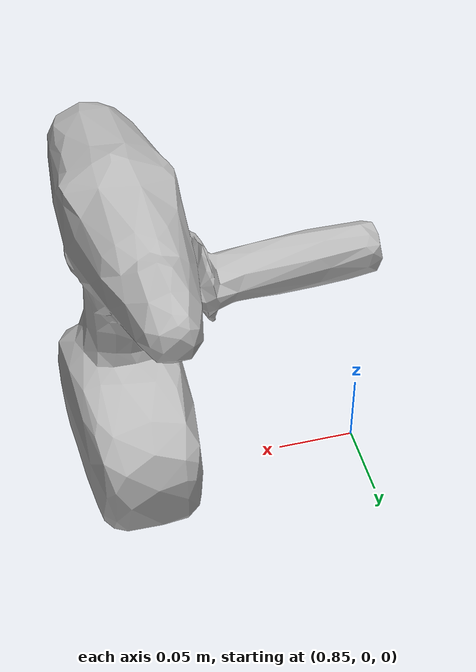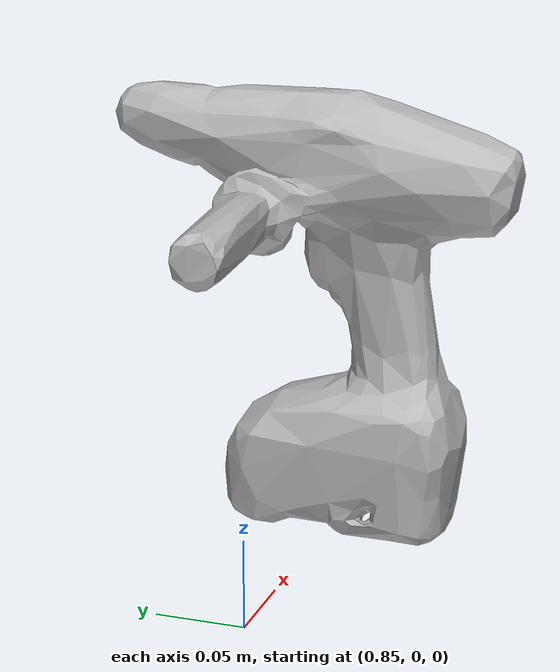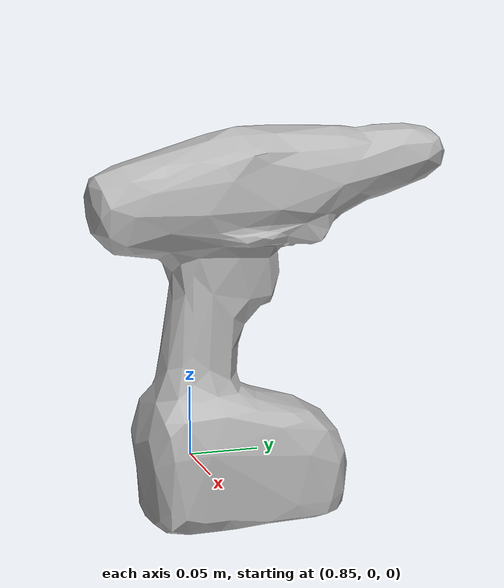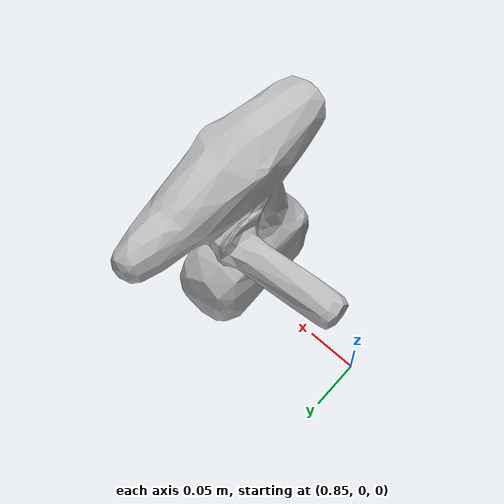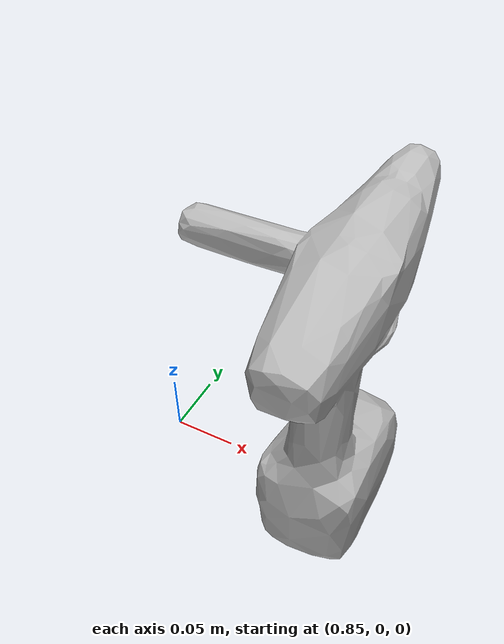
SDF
<?xml version="1.0" ?>
<sdf version="1.4">
  <world name="default">
    <include>
      <pose>1 0 0 0 0 0</pose>
      <static>true</static>
      <uri>model://cordless_drill</uri>
    </include>

    <model name="hokuyo">
      <static>true</static>
      <link name="link">
        <inertial>
          <mass>0.1</mass>
        </inertial>

        <sensor name="laser" type="ray">
          <pose>0.01 0 0.20 0 -0 0</pose>
          <ray>
            <scan>
              <horizontal>
                <samples>20</samples>
                <resolution>1</resolution>
                <min_angle>-0.16889</min_angle>
                <max_angle>0.168899</max_angle>
              </horizontal>
            </scan>
            <range>
              <min>0.08</min>
              <max>10</max>
              <resolution>0.01</resolution>
            </range>
          </ray>

          <plugin name="laser" filename="libRayPlugin.so" />
          <always_on>1</always_on>
          <update_rate>30</update_rate>
          <visualize>true</visualize>
        </sensor>
      </link>
    </model>

  </world>
</sdf>

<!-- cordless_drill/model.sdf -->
<sdf version="1.5">
  <model name="drill">
    <link name="link">
      <inertial>
        <pose>-0.00637 -0.008 0.13254 0 0 0</pose>
        <inertia>
          <ixx>0.01331127</ixx>
          <ixy>-0.00030365</ixy>
          <ixz>-0.00034148</ixz>
          <iyy>0.01157659</iyy>
          <iyz>0.00088073</iyz>
          <izz>0.00378028</izz>
        </inertia>
        <mass>1.50251902</mass>
      </inertial>
      <collision name="collision">
        <pose>0 0 -0.09 0 0 0</pose>
        <geometry>
          <mesh>
            <uri>model://../model_source/models/cordless_drill/meshes/cordless_drill.stl</uri>
          </mesh>
        </geometry>
        <surface>
          <contact>
            <ode>
              <max_vel>0.1</max_vel>
              <min_depth>0.001</min_depth>
            </ode>
          </contact>
        </surface>
      </collision>
      <visual name="visual">
        <pose>0 0 -0.09 0 0 0</pose>
        <geometry>
          <mesh>
            <uri>model://../model_source/models/cordless_drill/meshes/cordless_drill.dae</uri>
          </mesh>
        </geometry>
      </visual>
    </link>
  </model>
</sdf>
